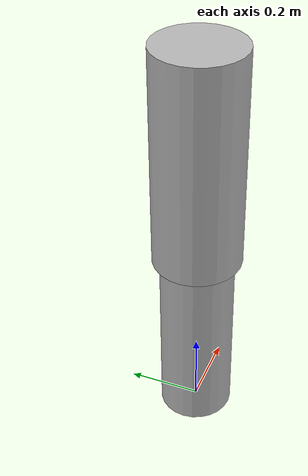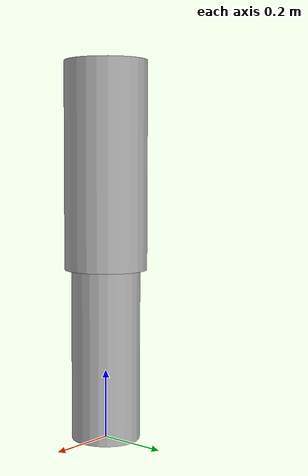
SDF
<?xml version='1.0'?>
<sdf version='1.6'>
  <model name='EvenLeg'>
    <link name='r_calf'>
      <pose frame=''>0 0 0.25 0 0 0</pose>
      <inertial>
        <mass>.3125</mass>
      </inertial>
      <gravity>1</gravity>
      <self_collide>1</self_collide>
      <visual name='r_calf_geom_visual'>
        <pose frame=''>0 0 0 0 0 0</pose>
        <geometry>
          <cylinder>
            <radius>0.1</radius>
            <length>0.5 </length>
          </cylinder>
        </geometry>
      </visual>
      <collision name='r_calf_geom'>
        <pose frame=''>0 0 0 0 0 0</pose>
        <geometry>
          <cylinder>
            <radius>0.1</radius>
            <length>0.5</length>
          </cylinder>
        </geometry>
      </collision>
    </link>

    <link name='r_thigh_lift'>
      <pose frame=''>0 0 0.8 0 0 0</pose>
      <inertial>
        <mass>.463</mass>
      </inertial>
      <gravity>1</gravity>
      <self_collide>1</self_collide>

      <visual name='r_thigh_lift_geom_visual'>
        <pose frame=''>0 0 0 0 -0 0</pose>
        <geometry>
          <cylinder>
            <radius>0.12</radius>
            <length>0.6</length>
          </cylinder>
        </geometry>
      </visual>
      <collision name='r_thigh_lift_geom'>
        <pose frame=''>0 0 0 0 0 0</pose>
        <geometry>
          <cylinder>
            <radius>0.12</radius>
            <length>0.6</length>
          </cylinder>
        </geometry>
      </collision>
    </link>

    <joint name='r_calf_joint' type='revolute'>
      <parent>r_thigh_lift</parent>
      <child>r_calf</child>
      <pose frame=''>0 0 0.25 0 0 0</pose>
      <axis>
        <xyz>0 1 0</xyz>
        <use_parent_model_frame>1</use_parent_model_frame>
        <limit>
          <lower>-1.57</lower>
          <upper>1.57</upper>
        </limit>
      </axis>
    </joint>

    <static>0</static>
    <allow_auto_disable>1</allow_auto_disable>

  </model>
</sdf>
